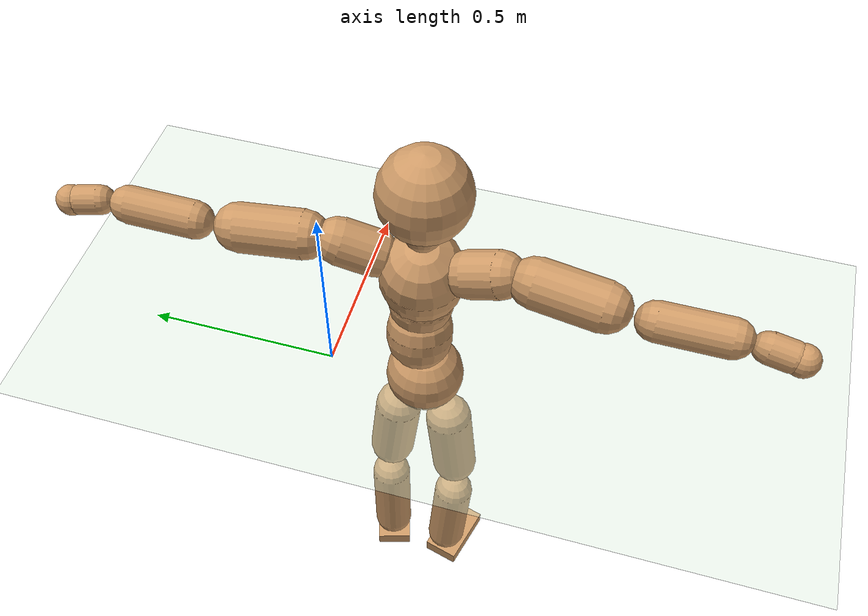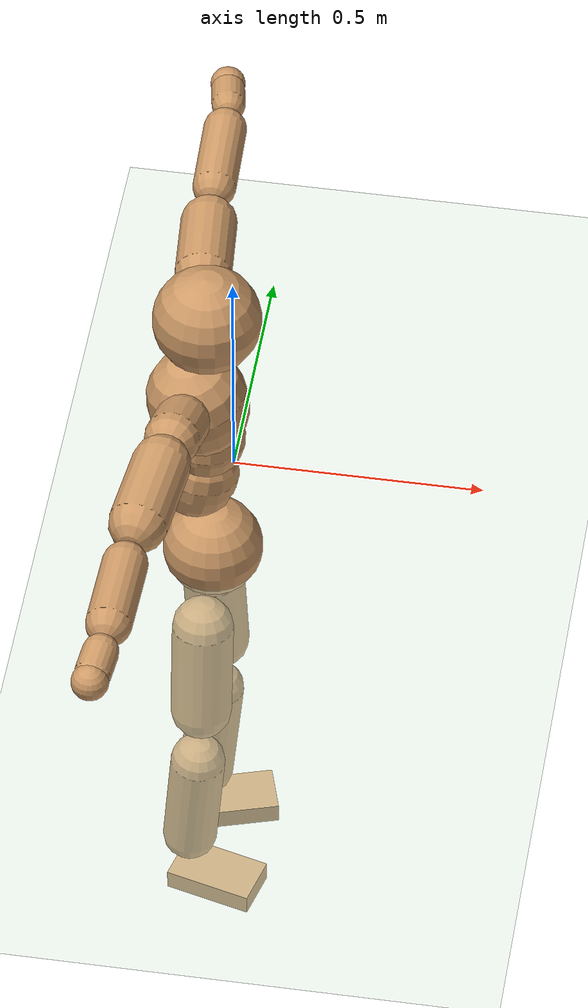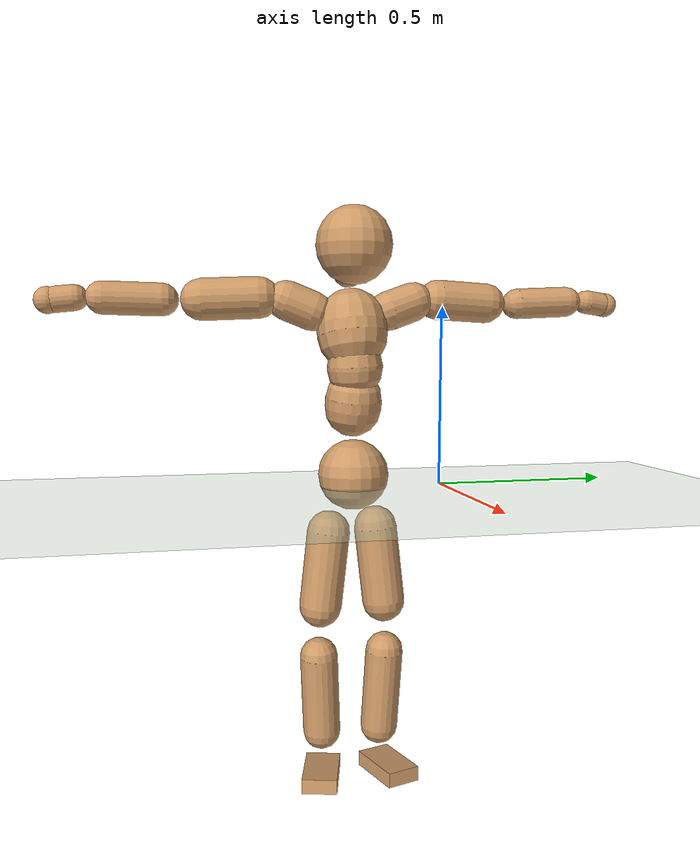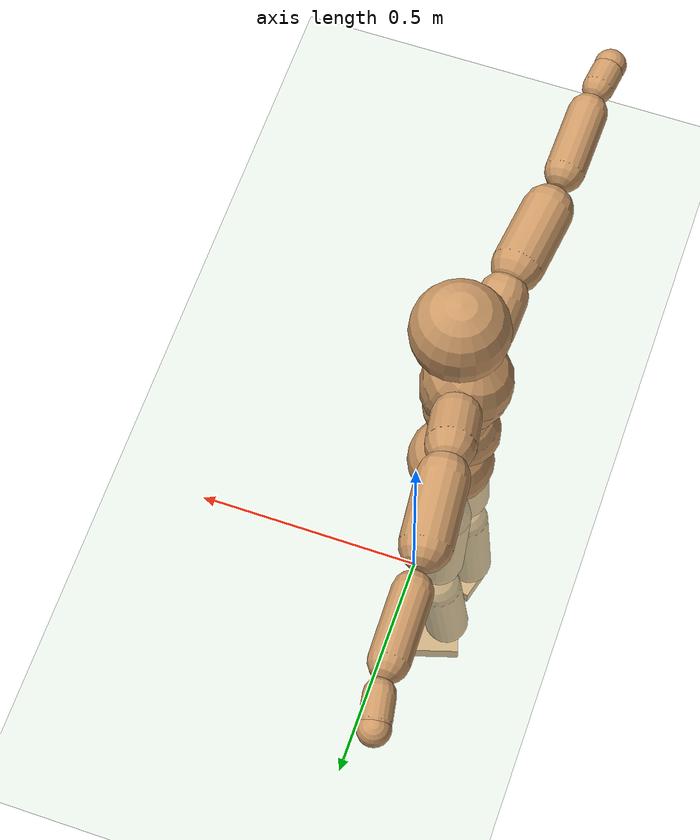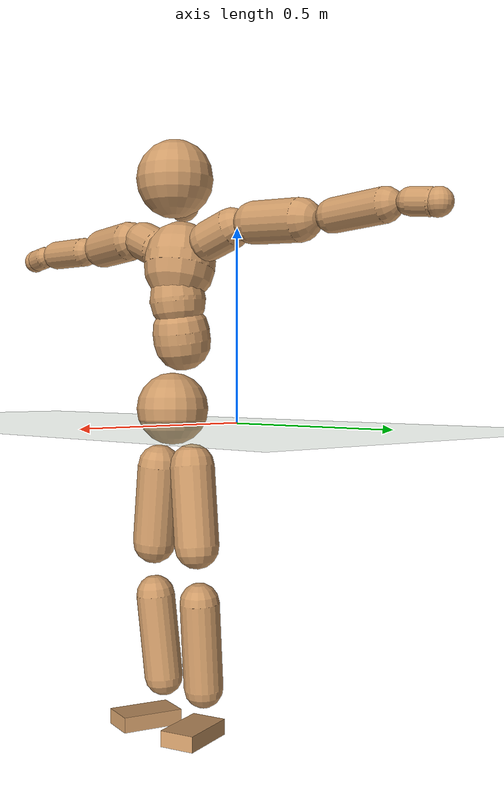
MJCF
<mujoco model="humanoid">
  <compiler coordinate="local"/>
  <default>
    <joint damping="0.0" armature="0.01" stiffness="0.0" limited="true"/>
    <geom conaffinity="1" condim="3" contype="7" margin="0.001" rgba="0.8 0.6 .4 1"/>
  </default>
  <asset>
    <texture type="skybox" builtin="gradient" rgb1=".4 .5 .6" rgb2="0 0 0" width="100" height="100"/>
    <texture builtin="flat" height="1278" mark="cross" markrgb="1 1 1" name="texgeom" random="0.01" rgb1="0.8 0.6 0.4" rgb2="0.8 0.6 0.4" type="cube" width="127"/>
    <texture builtin="checker" height="100" name="texplane" rgb1="0 0 0" rgb2="0.8 0.8 0.8" type="2d" width="100"/>
    <material name="MatPlane" reflectance="0.5" shininess="1" specular="1" texrepeat="60 60" texture="texplane"/>
    <material name="geom" texture="texgeom" texuniform="true"/>
  </asset>
  <worldbody>
    <light cutoff="100" diffuse="1 1 1" dir="-0 0 -1.3" directional="true" exponent="1" pos="0 0 1.3" specular=".1 .1 .1"/>
    <geom conaffinity="1" condim="3" name="floor" pos="0 0 0" rgba="0.8 0.9 0.8 1" size="100 100 .2" type="plane" material="MatPlane"/>
    <body name="Pelvis" pos="-0.0005 -0.2555 0.0331">
      <freejoint name="Pelvis"/>
      <geom type="sphere" contype="1" conaffinity="1" density="500" size="0.0995" pos="0.0000 0.0000 0.0000" name="Pelvis"/>
      <body name="L_Hip" pos="-0.0135 0.0603 -0.0829">
        <joint name="L_Hip_x" type="hinge" pos="0 0 0" axis="1 0 0" stiffness="800" damping="80" armature="0.02" range="-180.0000 180.0000"/>
        <joint name="L_Hip_y" type="hinge" pos="0 0 0" axis="0 1 0" stiffness="800" damping="80" armature="0.02" range="-180.0000 180.0000"/>
        <joint name="L_Hip_z" type="hinge" pos="0 0 0" axis="0 0 1" stiffness="800" damping="80" armature="0.02" range="-180.0000 180.0000"/>
        <geom type="capsule" contype="1" conaffinity="1" density="500" fromto="0.0017 0.0080 -0.0732 0.0066 0.0320 -0.2928" size="0.0614" name="L_Hip"/>
        <body name="L_Knee" pos="0.0083 0.0399 -0.3661">
          <joint name="L_Knee_x" type="hinge" pos="0 0 0" axis="1 0 0" stiffness="800" damping="80" armature="0.02" range="-180.0000 180.0000"/>
          <joint name="L_Knee_y" type="hinge" pos="0 0 0" axis="0 1 0" stiffness="800" damping="80" armature="0.02" range="-180.0000 180.0000"/>
          <joint name="L_Knee_z" type="hinge" pos="0 0 0" axis="0 0 1" stiffness="800" damping="80" armature="0.02" range="-180.0000 180.0000"/>
          <geom type="capsule" contype="1" conaffinity="1" density="500" fromto="-0.0076 -0.0030 -0.0811 -0.0304 -0.0120 -0.3246" size="0.0549" name="L_Knee"/>
          <body name="L_Ankle" pos="-0.0379 -0.0151 -0.4057">
            <joint name="L_Ankle_x" type="hinge" pos="0 0 0" axis="1 0 0" stiffness="800" damping="80" armature="0.02" range="-180.0000 180.0000"/>
            <joint name="L_Ankle_y" type="hinge" pos="0 0 0" axis="0 1 0" stiffness="800" damping="80" armature="0.02" range="-180.0000 180.0000"/>
            <joint name="L_Ankle_z" type="hinge" pos="0 0 0" axis="0 0 1" stiffness="800" damping="80" armature="0.02" range="-180.0000 180.0000"/>
            <geom type="box" contype="1" conaffinity="1" density="500" pos="0.0602 0.0185 -0.0289" size="0.0872 0.0498 0.022" quat="0.9889 0.0000 0.0000 0.1484" name="L_Ankle"/>
            <body name="L_Toe" pos="0.1204 0.037 -0.0577">
              <joint name="L_Toe_x" type="hinge" pos="0 0 0" axis="1 0 0" stiffness="500" damping="50" armature="0.02" range="-180.0000 180.0000"/>
              <joint name="L_Toe_y" type="hinge" pos="0 0 0" axis="0 1 0" stiffness="500" damping="50" armature="0.02" range="-180.0000 180.0000"/>
              <joint name="L_Toe_z" type="hinge" pos="0 0 0" axis="0 0 1" stiffness="500" damping="50" armature="0.02" range="-180.0000 180.0000"/>
              <geom type="box" contype="1" conaffinity="1" density="500" pos="0.0000 0.0000 0.0280" size="0.001 0.0025 0.0011" quat="0.9881 0.0000 0.0000 0.1535" name="L_Toe"/>
            </body>
          </body>
        </body>
      </body>
      <body name="R_Hip" pos="-0.0097 -0.0616 -0.0911">
        <joint name="R_Hip_x" type="hinge" pos="0 0 0" axis="1 0 0" stiffness="800" damping="80" armature="0.02" range="-180.0000 180.0000"/>
        <joint name="R_Hip_y" type="hinge" pos="0 0 0" axis="0 1 0" stiffness="800" damping="80" armature="0.02" range="-180.0000 180.0000"/>
        <joint name="R_Hip_z" type="hinge" pos="0 0 0" axis="0 0 1" stiffness="800" damping="80" armature="0.02" range="-180.0000 180.0000"/>
        <geom type="capsule" contype="1" conaffinity="1" density="500" fromto="-0.0005 -0.0081 -0.0730 -0.0021 -0.0323 -0.2921" size="0.061" name="R_Hip"/>
        <body name="R_Knee" pos="-0.0027 -0.0403 -0.3652">
          <joint name="R_Knee_x" type="hinge" pos="0 0 0" axis="1 0 0" stiffness="800" damping="80" armature="0.02" range="-180.0000 180.0000"/>
          <joint name="R_Knee_y" type="hinge" pos="0 0 0" axis="0 1 0" stiffness="800" damping="80" armature="0.02" range="-180.0000 180.0000"/>
          <joint name="R_Knee_z" type="hinge" pos="0 0 0" axis="0 0 1" stiffness="800" damping="80" armature="0.02" range="-180.0000 180.0000"/>
          <geom type="capsule" contype="1" conaffinity="1" density="500" fromto="-0.0069 0.0038 -0.0799 -0.0276 0.0151 -0.3197" size="0.0551" name="R_Knee"/>
          <body name="R_Ankle" pos="-0.0345 0.0189 -0.3996">
            <joint name="R_Ankle_x" type="hinge" pos="0 0 0" axis="1 0 0" stiffness="800" damping="80" armature="0.02" range="-180.0000 180.0000"/>
            <joint name="R_Ankle_y" type="hinge" pos="0 0 0" axis="0 1 0" stiffness="800" damping="80" armature="0.02" range="-180.0000 180.0000"/>
            <joint name="R_Ankle_z" type="hinge" pos="0 0 0" axis="0 0 1" stiffness="800" damping="80" armature="0.02" range="-180.0000 180.0000"/>
            <geom type="box" contype="1" conaffinity="1" density="500" pos="0.0638 -0.0167 -0.0301" size="0.0885 0.0507 0.0217" quat="0.9919 0.0000 0.0000 -0.1273" name="R_Ankle"/>
            <body name="R_Toe" pos="0.1276 -0.0333 -0.0601">
              <joint name="R_Toe_x" type="hinge" pos="0 0 0" axis="1 0 0" stiffness="500" damping="50" armature="0.02" range="-180.0000 180.0000"/>
              <joint name="R_Toe_y" type="hinge" pos="0 0 0" axis="0 1 0" stiffness="500" damping="50" armature="0.02" range="-180.0000 180.0000"/>
              <joint name="R_Toe_z" type="hinge" pos="0 0 0" axis="0 0 1" stiffness="500" damping="50" armature="0.02" range="-180.0000 180.0000"/>
              <geom type="box" contype="1" conaffinity="1" density="500" pos="0.0000 0.0000 0.0298" size="0.0011 0.0025 0.0011" quat="0.9930 0.0000 0.0000 -0.1182" name="R_Toe"/>
            </body>
          </body>
        </body>
      </body>
      <body name="Torso" pos="-0.042 0.004 0.128">
        <joint name="Torso_x" type="hinge" pos="0 0 0" axis="1 0 0" stiffness="1000" damping="100" armature="0.02" range="-180.0000 180.0000"/>
        <joint name="Torso_y" type="hinge" pos="0 0 0" axis="0 1 0" stiffness="1000" damping="100" armature="0.02" range="-180.0000 180.0000"/>
        <joint name="Torso_z" type="hinge" pos="0 0 0" axis="0 0 1" stiffness="1000" damping="100" armature="0.02" range="-180.0000 180.0000"/>
        <geom type="capsule" contype="1" conaffinity="1" density="500" fromto="0.0165 0.0030 0.0852 0.0110 0.0020 0.0568" size="0.079701" name="Torso"/>
        <body name="Spine" pos="0.0275 0.005 0.142">
          <joint name="Spine_x" type="hinge" pos="0 0 0" axis="1 0 0" stiffness="1000" damping="100" armature="0.02" range="-180.0000 180.0000"/>
          <joint name="Spine_y" type="hinge" pos="0 0 0" axis="0 1 0" stiffness="1000" damping="100" armature="0.02" range="-180.0000 180.0000"/>
          <joint name="Spine_z" type="hinge" pos="0 0 0" axis="0 0 1" stiffness="1000" damping="100" armature="0.02" range="-180.0000 180.0000"/>
          <geom type="capsule" contype="1" conaffinity="1" density="500" fromto="0.0024 -0.0016 0.0346 0.0016 -0.0010 0.0231" size="0.077841" name="Spine"/>
          <body name="Chest" pos="0.0041 -0.0026 0.0577">
            <joint name="Chest_x" type="hinge" pos="0 0 0" axis="1 0 0" stiffness="1000" damping="100" armature="0.02" range="-180.0000 180.0000"/>
            <joint name="Chest_y" type="hinge" pos="0 0 0" axis="0 1 0" stiffness="1000" damping="100" armature="0.02" range="-180.0000 180.0000"/>
            <joint name="Chest_z" type="hinge" pos="0 0 0" axis="0 0 1" stiffness="1000" damping="100" armature="0.02" range="-180.0000 180.0000"/>
            <geom type="capsule" contype="1" conaffinity="1" density="500" fromto="-0.0185 -0.0051 0.0894 -0.0123 -0.0034 0.0596" size="0.098394" name="Chest"/>
            <body name="Neck" pos="-0.0444 -0.0127 0.216">
              <joint name="Neck_x" type="hinge" pos="0 0 0" axis="1 0 0" stiffness="500" damping="50" armature="0.02" range="-180.0000 180.0000"/>
              <joint name="Neck_y" type="hinge" pos="0 0 0" axis="0 1 0" stiffness="500" damping="50" armature="0.02" range="-180.0000 180.0000"/>
              <joint name="Neck_z" type="hinge" pos="0 0 0" axis="0 0 1" stiffness="500" damping="50" armature="0.02" range="-180.0000 180.0000"/>
              <geom type="capsule" contype="1" conaffinity="1" density="500" fromto="0.0097 0.0020 0.0169 0.0388 0.0081 0.0675" size="0.043338" name="Neck"/>
              <body name="Head" pos="0.0485 0.0101 0.0844">
                <joint name="Head_x" type="hinge" pos="0 0 0" axis="1 0 0" stiffness="500" damping="50" armature="0.02" range="-180.0000 180.0000"/>
                <joint name="Head_y" type="hinge" pos="0 0 0" axis="0 1 0" stiffness="500" damping="50" armature="0.02" range="-180.0000 180.0000"/>
                <joint name="Head_z" type="hinge" pos="0 0 0" axis="0 0 1" stiffness="500" damping="50" armature="0.02" range="-180.0000 180.0000"/>
                <geom type="sphere" contype="1" conaffinity="1" density="500" size="0.1060" pos="0.0000 0.0000 0.0000" name="Head"/>
              </body>
            </body>
            <body name="L_Thorax" pos="-0.0218 0.0754 0.1163">
              <joint name="L_Thorax_x" type="hinge" pos="0 0 0" axis="1 0 0" stiffness="500" damping="50" armature="0.02" range="-180.0000 180.0000"/>
              <joint name="L_Thorax_y" type="hinge" pos="0 0 0" axis="0 1 0" stiffness="500" damping="50" armature="0.02" range="-180.0000 180.0000"/>
              <joint name="L_Thorax_z" type="hinge" pos="0 0 0" axis="0 0 1" stiffness="500" damping="50" armature="0.02" range="-180.0000 180.0000"/>
              <geom type="capsule" contype="1" conaffinity="1" density="500" fromto="-0.0042 0.0257 0.0092 -0.0169 0.1027 0.0367" size="0.0544" name="L_Thorax"/>
              <body name="L_Shoulder" pos="-0.0211 0.1283 0.0458">
                <joint name="L_Shoulder_x" type="hinge" pos="0 0 0" axis="1 0 0" stiffness="500" damping="50" armature="0.02" range="-720.0000 720.0000"/>
                <joint name="L_Shoulder_y" type="hinge" pos="0 0 0" axis="0 1 0" stiffness="500" damping="50" armature="0.02" range="-720.0000 720.0000"/>
                <joint name="L_Shoulder_z" type="hinge" pos="0 0 0" axis="0 0 1" stiffness="500" damping="50" armature="0.02" range="-720.0000 720.0000"/>
                <geom type="capsule" contype="1" conaffinity="1" density="500" fromto="-0.0045 0.0496 -0.0026 -0.0179 0.1983 -0.0102" size="0.0562" name="L_Shoulder"/>
                <body name="L_Elbow" pos="-0.0224 0.2479 -0.0128">
                  <joint name="L_Elbow_x" type="hinge" pos="0 0 0" axis="1 0 0" stiffness="500" damping="50" armature="0.02" range="-720.0000 720.0000"/>
                  <joint name="L_Elbow_y" type="hinge" pos="0 0 0" axis="0 1 0" stiffness="500" damping="50" armature="0.02" range="-720.0000 720.0000"/>
                  <joint name="L_Elbow_z" type="hinge" pos="0 0 0" axis="0 0 1" stiffness="500" damping="50" armature="0.02" range="-720.0000 720.0000"/>
                  <geom type="capsule" contype="1" conaffinity="1" density="500" fromto="-0.0014 0.0517 0.0025 -0.0057 0.2069 0.0100" size="0.0434" name="L_Elbow"/>
                  <body name="L_Wrist" pos="-0.0071 0.2586 0.0124">
                    <joint name="L_Wrist_x" type="hinge" pos="0 0 0" axis="1 0 0" stiffness="300" damping="30" armature="0.02" range="-180.0000 180.0000"/>
                    <joint name="L_Wrist_y" type="hinge" pos="0 0 0" axis="0 1 0" stiffness="300" damping="30" armature="0.02" range="-180.0000 180.0000"/>
                    <joint name="L_Wrist_z" type="hinge" pos="0 0 0" axis="0 0 1" stiffness="300" damping="30" armature="0.02" range="-180.0000 180.0000"/>
                    <geom type="capsule" contype="1" conaffinity="1" density="500" fromto="-0.0030 0.0170 -0.0021 -0.0120 0.0678 -0.0082" size="0.0338" name="L_Wrist"/>
                    <body name="L_Hand" pos="-0.015 0.0848 -0.0103">
                      <joint name="L_Hand_x" type="hinge" pos="0 0 0" axis="1 0 0" stiffness="300" damping="30" armature="0.02" range="-180.0000 180.0000"/>
                      <joint name="L_Hand_y" type="hinge" pos="0 0 0" axis="0 1 0" stiffness="300" damping="30" armature="0.02" range="-180.0000 180.0000"/>
                      <joint name="L_Hand_z" type="hinge" pos="0 0 0" axis="0 0 1" stiffness="300" damping="30" armature="0.02" range="-180.0000 180.0000"/>
                      <geom type="sphere" contype="1" conaffinity="1" density="500" size="0.0349" pos="0.0000 0.0000 0.0000" name="L_Hand"/>
                    </body>
                  </body>
                </body>
              </body>
            </body>
            <body name="R_Thorax" pos="-0.0263 -0.0881 0.1149">
              <joint name="R_Thorax_x" type="hinge" pos="0 0 0" axis="1 0 0" stiffness="500" damping="50" armature="0.02" range="-180.0000 180.0000"/>
              <joint name="R_Thorax_y" type="hinge" pos="0 0 0" axis="0 1 0" stiffness="500" damping="50" armature="0.02" range="-180.0000 180.0000"/>
              <joint name="R_Thorax_z" type="hinge" pos="0 0 0" axis="0 0 1" stiffness="500" damping="50" armature="0.02" range="-180.0000 180.0000"/>
              <geom type="capsule" contype="1" conaffinity="1" density="500" fromto="-0.0021 -0.0239 0.0095 -0.0084 -0.0957 0.0382" size="0.0545" name="R_Thorax"/>
              <body name="R_Shoulder" pos="-0.0105 -0.1196 0.0477">
                <joint name="R_Shoulder_x" type="hinge" pos="0 0 0" axis="1 0 0" stiffness="500" damping="50" armature="0.02" range="-720.0000 720.0000"/>
                <joint name="R_Shoulder_y" type="hinge" pos="0 0 0" axis="0 1 0" stiffness="500" damping="50" armature="0.02" range="-720.0000 720.0000"/>
                <joint name="R_Shoulder_z" type="hinge" pos="0 0 0" axis="0 0 1" stiffness="500" damping="50" armature="0.02" range="-720.0000 720.0000"/>
                <geom type="capsule" contype="1" conaffinity="1" density="500" fromto="-0.0060 -0.0513 -0.0021 -0.0240 -0.2054 -0.0083" size="0.0572" name="R_Shoulder"/>
                <body name="R_Elbow" pos="-0.03 -0.2567 -0.0104">
                  <joint name="R_Elbow_x" type="hinge" pos="0 0 0" axis="1 0 0" stiffness="500" damping="50" armature="0.02" range="-720.0000 720.0000"/>
                  <joint name="R_Elbow_y" type="hinge" pos="0 0 0" axis="0 1 0" stiffness="500" damping="50" armature="0.02" range="-720.0000 720.0000"/>
                  <joint name="R_Elbow_z" type="hinge" pos="0 0 0" axis="0 0 1" stiffness="500" damping="50" armature="0.02" range="-720.0000 720.0000"/>
                  <geom type="capsule" contype="1" conaffinity="1" density="500" fromto="-0.0011 -0.0525 0.0012 -0.0044 -0.2098 0.0047" size="0.0443" name="R_Elbow"/>
                  <body name="R_Wrist" pos="-0.0055 -0.2623 0.0058">
                    <joint name="R_Wrist_x" type="hinge" pos="0 0 0" axis="1 0 0" stiffness="300" damping="30" armature="0.02" range="-180.0000 180.0000"/>
                    <joint name="R_Wrist_y" type="hinge" pos="0 0 0" axis="0 1 0" stiffness="300" damping="30" armature="0.02" range="-180.0000 180.0000"/>
                    <joint name="R_Wrist_z" type="hinge" pos="0 0 0" axis="0 0 1" stiffness="300" damping="30" armature="0.02" range="-180.0000 180.0000"/>
                    <geom type="capsule" contype="1" conaffinity="1" density="500" fromto="-0.0020 -0.0177 -0.0017 -0.0078 -0.0707 -0.0068" size="0.035" name="R_Wrist"/>
                    <body name="R_Hand" pos="-0.0098 -0.0884 -0.0086">
                      <joint name="R_Hand_x" type="hinge" pos="0 0 0" axis="1 0 0" stiffness="300" damping="30" armature="0.02" range="-180.0000 180.0000"/>
                      <joint name="R_Hand_y" type="hinge" pos="0 0 0" axis="0 1 0" stiffness="300" damping="30" armature="0.02" range="-180.0000 180.0000"/>
                      <joint name="R_Hand_z" type="hinge" pos="0 0 0" axis="0 0 1" stiffness="300" damping="30" armature="0.02" range="-180.0000 180.0000"/>
                      <geom type="sphere" contype="1" conaffinity="1" density="500" size="0.0360" pos="0.0000 0.0000 0.0000" name="R_Hand"/>
                    </body>
                  </body>
                </body>
              </body>
            </body>
          </body>
        </body>
      </body>
    </body>
  </worldbody>
  <actuator>
    <motor name="L_Hip_x" joint="L_Hip_x" gear="500"/>
    <motor name="L_Hip_y" joint="L_Hip_y" gear="500"/>
    <motor name="L_Hip_z" joint="L_Hip_z" gear="500"/>
    <motor name="L_Knee_x" joint="L_Knee_x" gear="500"/>
    <motor name="L_Knee_y" joint="L_Knee_y" gear="500"/>
    <motor name="L_Knee_z" joint="L_Knee_z" gear="500"/>
    <motor name="L_Ankle_x" joint="L_Ankle_x" gear="500"/>
    <motor name="L_Ankle_y" joint="L_Ankle_y" gear="500"/>
    <motor name="L_Ankle_z" joint="L_Ankle_z" gear="500"/>
    <motor name="L_Toe_x" joint="L_Toe_x" gear="500"/>
    <motor name="L_Toe_y" joint="L_Toe_y" gear="500"/>
    <motor name="L_Toe_z" joint="L_Toe_z" gear="500"/>
    <motor name="R_Hip_x" joint="R_Hip_x" gear="500"/>
    <motor name="R_Hip_y" joint="R_Hip_y" gear="500"/>
    <motor name="R_Hip_z" joint="R_Hip_z" gear="500"/>
    <motor name="R_Knee_x" joint="R_Knee_x" gear="500"/>
    <motor name="R_Knee_y" joint="R_Knee_y" gear="500"/>
    <motor name="R_Knee_z" joint="R_Knee_z" gear="500"/>
    <motor name="R_Ankle_x" joint="R_Ankle_x" gear="500"/>
    <motor name="R_Ankle_y" joint="R_Ankle_y" gear="500"/>
    <motor name="R_Ankle_z" joint="R_Ankle_z" gear="500"/>
    <motor name="R_Toe_x" joint="R_Toe_x" gear="500"/>
    <motor name="R_Toe_y" joint="R_Toe_y" gear="500"/>
    <motor name="R_Toe_z" joint="R_Toe_z" gear="500"/>
    <motor name="Torso_x" joint="Torso_x" gear="500"/>
    <motor name="Torso_y" joint="Torso_y" gear="500"/>
    <motor name="Torso_z" joint="Torso_z" gear="500"/>
    <motor name="Spine_x" joint="Spine_x" gear="500"/>
    <motor name="Spine_y" joint="Spine_y" gear="500"/>
    <motor name="Spine_z" joint="Spine_z" gear="500"/>
    <motor name="Chest_x" joint="Chest_x" gear="500"/>
    <motor name="Chest_y" joint="Chest_y" gear="500"/>
    <motor name="Chest_z" joint="Chest_z" gear="500"/>
    <motor name="Neck_x" joint="Neck_x" gear="500"/>
    <motor name="Neck_y" joint="Neck_y" gear="500"/>
    <motor name="Neck_z" joint="Neck_z" gear="500"/>
    <motor name="Head_x" joint="Head_x" gear="500"/>
    <motor name="Head_y" joint="Head_y" gear="500"/>
    <motor name="Head_z" joint="Head_z" gear="500"/>
    <motor name="L_Thorax_x" joint="L_Thorax_x" gear="500"/>
    <motor name="L_Thorax_y" joint="L_Thorax_y" gear="500"/>
    <motor name="L_Thorax_z" joint="L_Thorax_z" gear="500"/>
    <motor name="L_Shoulder_x" joint="L_Shoulder_x" gear="500"/>
    <motor name="L_Shoulder_y" joint="L_Shoulder_y" gear="500"/>
    <motor name="L_Shoulder_z" joint="L_Shoulder_z" gear="500"/>
    <motor name="L_Elbow_x" joint="L_Elbow_x" gear="500"/>
    <motor name="L_Elbow_y" joint="L_Elbow_y" gear="500"/>
    <motor name="L_Elbow_z" joint="L_Elbow_z" gear="500"/>
    <motor name="L_Wrist_x" joint="L_Wrist_x" gear="500"/>
    <motor name="L_Wrist_y" joint="L_Wrist_y" gear="500"/>
    <motor name="L_Wrist_z" joint="L_Wrist_z" gear="500"/>
    <motor name="L_Hand_x" joint="L_Hand_x" gear="500"/>
    <motor name="L_Hand_y" joint="L_Hand_y" gear="500"/>
    <motor name="L_Hand_z" joint="L_Hand_z" gear="500"/>
    <motor name="R_Thorax_x" joint="R_Thorax_x" gear="500"/>
    <motor name="R_Thorax_y" joint="R_Thorax_y" gear="500"/>
    <motor name="R_Thorax_z" joint="R_Thorax_z" gear="500"/>
    <motor name="R_Shoulder_x" joint="R_Shoulder_x" gear="500"/>
    <motor name="R_Shoulder_y" joint="R_Shoulder_y" gear="500"/>
    <motor name="R_Shoulder_z" joint="R_Shoulder_z" gear="500"/>
    <motor name="R_Elbow_x" joint="R_Elbow_x" gear="500"/>
    <motor name="R_Elbow_y" joint="R_Elbow_y" gear="500"/>
    <motor name="R_Elbow_z" joint="R_Elbow_z" gear="500"/>
    <motor name="R_Wrist_x" joint="R_Wrist_x" gear="500"/>
    <motor name="R_Wrist_y" joint="R_Wrist_y" gear="500"/>
    <motor name="R_Wrist_z" joint="R_Wrist_z" gear="500"/>
    <motor name="R_Hand_x" joint="R_Hand_x" gear="500"/>
    <motor name="R_Hand_y" joint="R_Hand_y" gear="500"/>
    <motor name="R_Hand_z" joint="R_Hand_z" gear="500"/>
  </actuator>
  <contact>
    <exclude body1="Torso" body2="Chest"/>
    <exclude body1="Head" body2="Chest"/>
    <exclude body1="R_Knee" body2="R_Toe"/>
    <exclude body1="R_Knee" body2="L_Ankle"/>
    <exclude body1="R_Knee" body2="L_Toe"/>
    <exclude body1="L_Knee" body2="L_Toe"/>
    <exclude body1="L_Knee" body2="R_Ankle"/>
    <exclude body1="L_Knee" body2="R_Toe"/>
    <exclude body1="L_Shoulder" body2="Chest"/>
    <exclude body1="R_Shoulder" body2="Chest"/>
  </contact>
  <sensor/>
  <size njmax="700" nconmax="700"/>
</mujoco>
